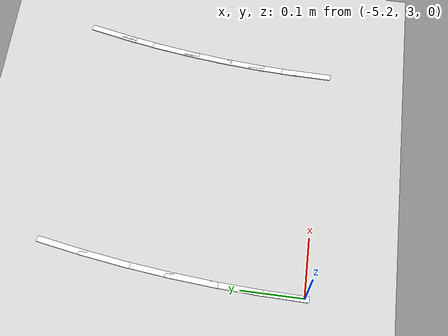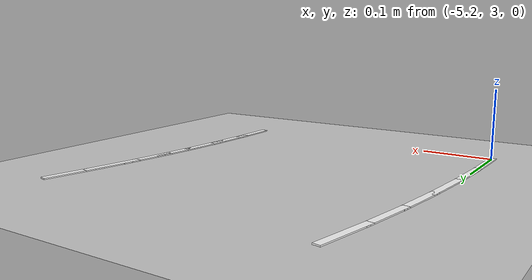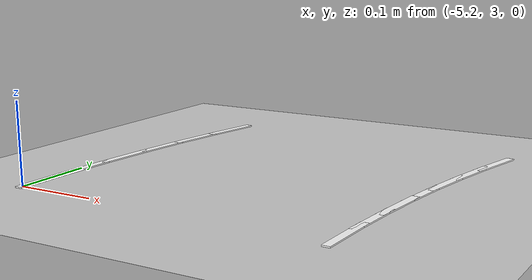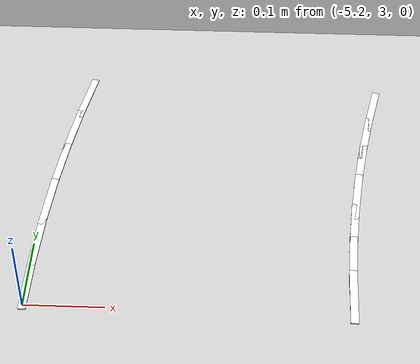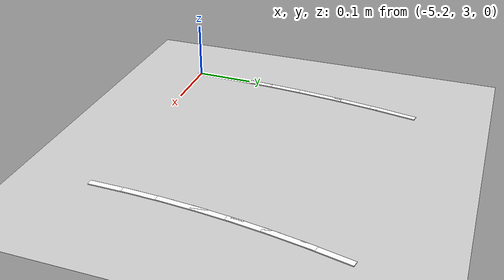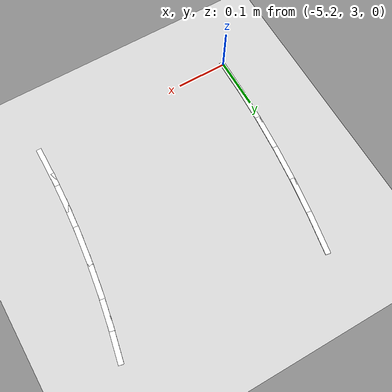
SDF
<sdf version="1.7">
 <world name="default">
  <model name="ground_plane">
   <static>1</static>
   <link name="link">
    <collision name="collision">
     <geometry><plane><normal>0 0 1</normal><size>100 100</size></plane></geometry>
     <surface>
      <contact><collide_bitmask>65535</collide_bitmask></contact>
      <friction><ode><mu>100</mu><mu2>50</mu2></ode></friction>
     </surface>
    </collision>
    <visual name="visual">
     <cast_shadows>0</cast_shadows>
     <geometry><plane><normal>0 0 1</normal><size>100 100</size></plane></geometry>
     <material>
      <script><uri>file://media/materials/scripts/gazebo.material</uri><name>Gazebo/Grey</name></script>
     </material>
    </visual>
   </link>
  </model>
  <model name="lane_line_left_292">
   <static>1</static>
   <link name="link">
    <pose>0 0 -0.004 0 -0 0</pose>
    <visual name="visual">
     <geometry><box><size>0.0841 0.01 0.01</size></box></geometry>
     <material><ambient>1 1 1 1</ambient><diffuse>1 1 1 1</diffuse></material>
    </visual>
    <collision name="collision"><geometry><box><size>0.0841 0.01 0.01</size></box></geometry></collision>
   </link>
   <pose>-4.76081 3.37231 0 0 0 -1.77917</pose>
  </model>
  <model name="lane_line_left_293">
   <static>1</static>
   <link name="link">
    <pose>0 0 -0.004 0 -0 0</pose>
    <visual name="visual">
     <geometry><box><size>0.0841 0.01 0.01</size></box></geometry>
     <material><ambient>1 1 1 1</ambient><diffuse>1 1 1 1</diffuse></material>
    </visual>
    <collision name="collision"><geometry><box><size>0.0841 0.01 0.01</size></box></geometry></collision>
   </link>
   <pose>-4.77184 3.31568 0 0 0 -1.74711</pose>
  </model>
  <model name="lane_line_right_293">
   <static>1</static>
   <link name="link">
    <pose>0 0 -0.004 0 -0 0</pose>
    <visual name="visual">
     <geometry><box><size>0.0841 0.01 0.01</size></box></geometry>
     <material><ambient>1 1 1 1</ambient><diffuse>1 1 1 1</diffuse></material>
    </visual>
    <collision name="collision"><geometry><box><size>0.0841 0.01 0.01</size></box></geometry></collision>
   </link>
   <pose>-5.16564 3.38584 0 0 0 -1.74711</pose>
  </model>
  <model name="lane_line_left_294">
   <static>1</static>
   <link name="link">
    <pose>0 0 -0.004 0 -0 0</pose>
    <visual name="visual">
     <geometry><box><size>0.0841 0.01 0.01</size></box></geometry>
     <material><ambient>1 1 1 1</ambient><diffuse>1 1 1 1</diffuse></material>
    </visual>
    <collision name="collision"><geometry><box><size>0.0841 0.01 0.01</size></box></geometry></collision>
   </link>
   <pose>-4.78105 3.25873 0 0 0 -1.71505</pose>
  </model>
  <model name="lane_line_right_294">
   <static>1</static>
   <link name="link">
    <pose>0 0 -0.004 0 -0 0</pose>
    <visual name="visual">
     <geometry><box><size>0.0841 0.01 0.01</size></box></geometry>
     <material><ambient>1 1 1 1</ambient><diffuse>1 1 1 1</diffuse></material>
    </visual>
    <collision name="collision"><geometry><box><size>0.0841 0.01 0.01</size></box></geometry></collision>
   </link>
   <pose>-5.17689 3.31623 0 0 0 -1.71505</pose>
  </model>
  <model name="lane_line_left_295">
   <static>1</static>
   <link name="link">
    <pose>0 0 -0.004 0 -0 0</pose>
    <visual name="visual">
     <geometry><box><size>0.0841 0.01 0.01</size></box></geometry>
     <material><ambient>1 1 1 1</ambient><diffuse>1 1 1 1</diffuse></material>
    </visual>
    <collision name="collision"><geometry><box><size>0.0841 0.01 0.01</size></box></geometry></collision>
   </link>
   <pose>-4.78843 3.20151 0 0 0 -1.683</pose>
  </model>
  <model name="lane_line_right_295">
   <static>1</static>
   <link name="link">
    <pose>0 0 -0.004 0 -0 0</pose>
    <visual name="visual">
     <geometry><box><size>0.0841 0.01 0.01</size></box></geometry>
     <material><ambient>1 1 1 1</ambient><diffuse>1 1 1 1</diffuse></material>
    </visual>
    <collision name="collision"><geometry><box><size>0.0841 0.01 0.01</size></box></geometry></collision>
   </link>
   <pose>-5.18591 3.24629 0 0 0 -1.683</pose>
  </model>
  <model name="lane_line_left_296">
   <static>1</static>
   <link name="link">
    <pose>0 0 -0.004 0 -0 0</pose>
    <visual name="visual">
     <geometry><box><size>0.0841 0.01 0.01</size></box></geometry>
     <material><ambient>1 1 1 1</ambient><diffuse>1 1 1 1</diffuse></material>
    </visual>
    <collision name="collision"><geometry><box><size>0.0841 0.01 0.01</size></box></geometry></collision>
   </link>
   <pose>-4.79397 3.14408 0 0 0 -1.65094</pose>
  </model>
  <model name="lane_line_right_296">
   <static>1</static>
   <link name="link">
    <pose>0 0 -0.004 0 -0 0</pose>
    <visual name="visual">
     <geometry><box><size>0.0841 0.01 0.01</size></box></geometry>
     <material><ambient>1 1 1 1</ambient><diffuse>1 1 1 1</diffuse></material>
    </visual>
    <collision name="collision"><geometry><box><size>0.0841 0.01 0.01</size></box></geometry></collision>
   </link>
   <pose>-5.19268 3.1761 0 0 0 -1.65094</pose>
  </model>
  <model name="lane_line_left_297">
   <static>1</static>
   <link name="link">
    <pose>0 0 -0.004 0 -0 0</pose>
    <visual name="visual">
     <geometry><box><size>0.0841 0.01 0.01</size></box></geometry>
     <material><ambient>1 1 1 1</ambient><diffuse>1 1 1 1</diffuse></material>
    </visual>
    <collision name="collision"><geometry><box><size>0.0841 0.01 0.01</size></box></geometry></collision>
   </link>
   <pose>-4.79766 3.08651 0 0 0 -1.61888</pose>
  </model>
  <model name="lane_line_right_297">
   <static>1</static>
   <link name="link">
    <pose>0 0 -0.004 0 -0 0</pose>
    <visual name="visual">
     <geometry><box><size>0.0841 0.01 0.01</size></box></geometry>
     <material><ambient>1 1 1 1</ambient><diffuse>1 1 1 1</diffuse></material>
    </visual>
    <collision name="collision"><geometry><box><size>0.0841 0.01 0.01</size></box></geometry></collision>
   </link>
   <pose>-5.1972 3.10574 0 0 0 -1.61888</pose>
  </model>
  <model name="lane_line_left_298">
   <static>1</static>
   <link name="link">
    <pose>0 0 -0.004 0 -0 0</pose>
    <visual name="visual">
     <geometry><box><size>0.0841 0.01 0.01</size></box></geometry>
     <material><ambient>1 1 1 1</ambient><diffuse>1 1 1 1</diffuse></material>
    </visual>
    <collision name="collision"><geometry><box><size>0.0841 0.01 0.01</size></box></geometry></collision>
   </link>
   <pose>-4.79951 3.02885 0 0 0 -1.58682</pose>
  </model>
  <model name="lane_line_right_298">
   <static>1</static>
   <link name="link">
    <pose>0 0 -0.004 0 -0 0</pose>
    <visual name="visual">
     <geometry><box><size>0.0841 0.01 0.01</size></box></geometry>
     <material><ambient>1 1 1 1</ambient><diffuse>1 1 1 1</diffuse></material>
    </visual>
    <collision name="collision"><geometry><box><size>0.0841 0.01 0.01</size></box></geometry></collision>
   </link>
   <pose>-5.19946 3.03526 0 0 0 -1.58682</pose>
  </model>
 </world>
</sdf>
